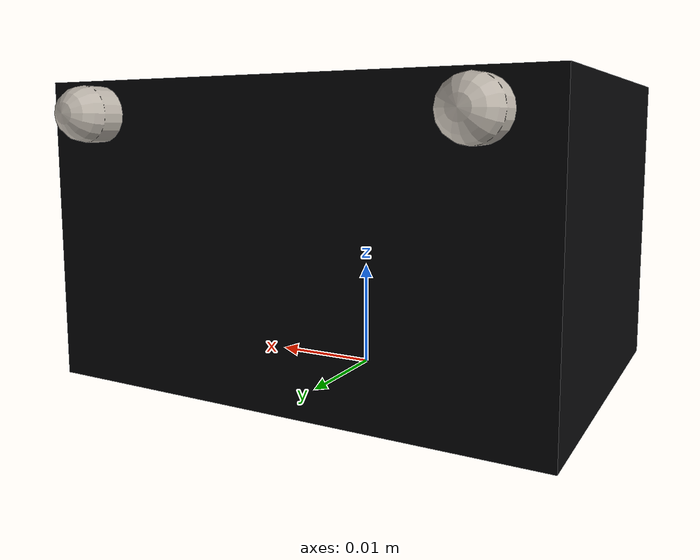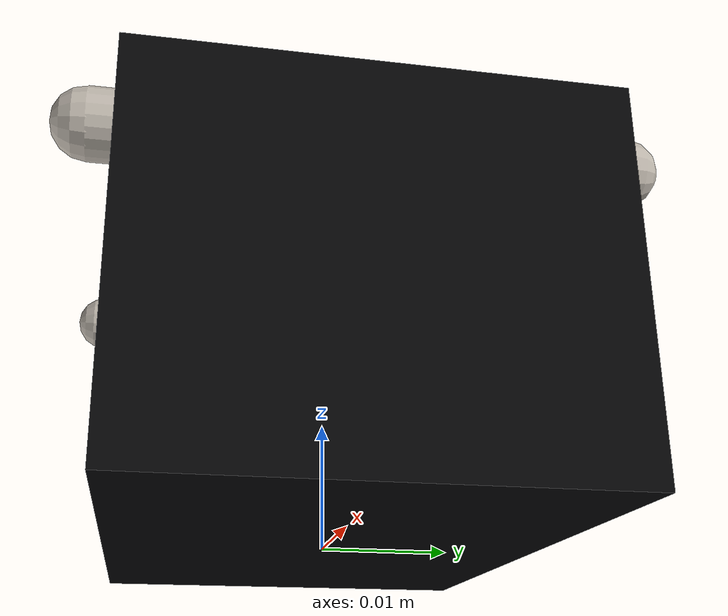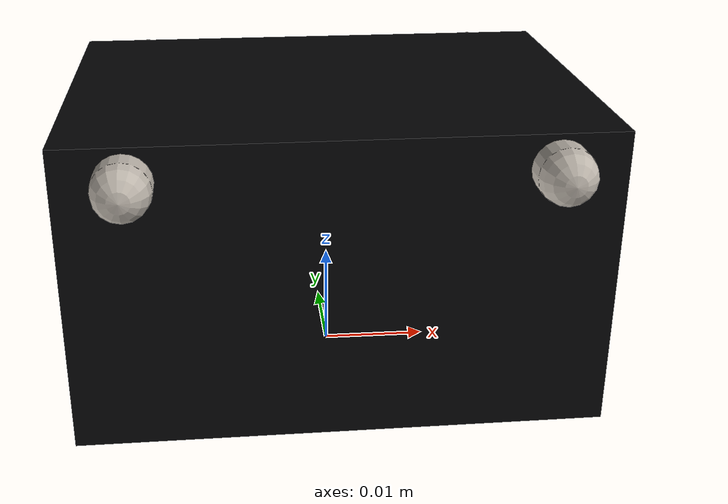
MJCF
<mujoco model="binder_clip">
  <asset>
    <material name="clip_black" rgba="0.02 0.02 0.025 1" specular="0.15" shininess="0.25" />
    <material name="clip_metal" rgba="0.75 0.72 0.68 1" specular="0.4" shininess="0.5" />
    <material name="collision_invisible" rgba="0.8 0.8 0.8 0" />
  </asset>
  <worldbody>
    <body>
      <body name="object">
        <geom name="clip_collision" type="box" pos="0 0 0.014" size="0.024 0.017 0.014" material="collision_invisible" group="0" friction="1.1 0.4 0.1" />
        <geom name="clip_body_visual" type="box" pos="0 0 0.014" size="0.024 0.017 0.014" material="clip_black" group="1" contype="0" conaffinity="0" />
        <geom name="clip_handle_left_visual" type="capsule" fromto="-0.018 -0.019 0.025 -0.018 0.019 0.025" size="0.0025" material="clip_metal" group="1" contype="0" conaffinity="0" />
        <geom name="clip_handle_right_visual" type="capsule" fromto="0.018 -0.019 0.025 0.018 0.019 0.025" size="0.0025" material="clip_metal" group="1" contype="0" conaffinity="0" />
      </body>
      <site rgba="0 0 0 0" size="0.005" pos="0 0 0.000" name="bottom_site" />
      <site rgba="0 0 0 0" size="0.005" pos="0 0 0.028" name="top_site" />
      <site rgba="0 0 0 0" size="0.005" pos="0.024 0.017 0.014" name="horizontal_radius_site" />
    </body>
  </worldbody>
</mujoco>
